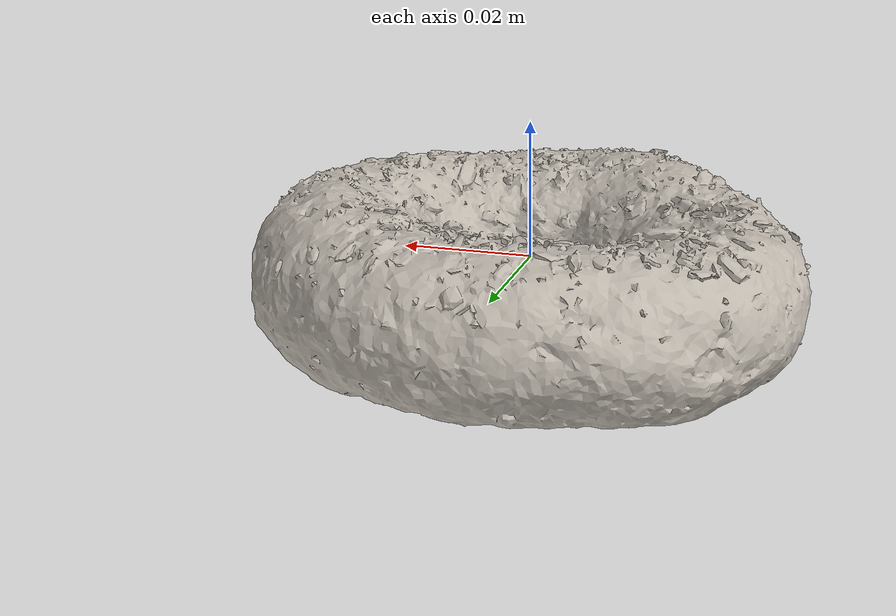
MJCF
<mujoco model="more_bagel_7">
    <compiler angle="radian"/>
  <default>
    <default class="visual">
      <geom group="1" type="mesh" contype="0" conaffinity="0"  mass="0.01"/>
    </default>
    <default class="collision">
    <geom group="0" type="mesh" solref="0.001 2"  solimp="0.998 0.998 0.001" mass="0.01"/>
    </default>
    <default class="grasppoint">
      <site type="sphere" size="0.01" group="4" rgba="0 0 1 1"/>
    </default>
  </default>
  <asset>
    <mesh file="visual/model_normalized_0.obj" name="model_normalized_0_vis" scale="0.08 0.08 0.08" refquat="1.0 0.0 0.0 0.0"/>
    <mesh file="collision/model_normalized_collision_22.obj" name="model_normalized_collision_22._coll" scale="0.08 0.08 0.08" refquat="1.0 0.0 0.0 0.0"/>
    <mesh file="collision/model_normalized_collision_23.obj" name="model_normalized_collision_23._coll" scale="0.08 0.08 0.08" refquat="1.0 0.0 0.0 0.0"/>
    <mesh file="collision/model_normalized_collision_21.obj" name="model_normalized_collision_21._coll" scale="0.08 0.08 0.08" refquat="1.0 0.0 0.0 0.0"/>
    <mesh file="collision/model_normalized_collision_20.obj" name="model_normalized_collision_20._coll" scale="0.08 0.08 0.08" refquat="1.0 0.0 0.0 0.0"/>
    <mesh file="collision/model_normalized_collision_24.obj" name="model_normalized_collision_24._coll" scale="0.08 0.08 0.08" refquat="1.0 0.0 0.0 0.0"/>
    <mesh file="collision/model_normalized_collision_30.obj" name="model_normalized_collision_30._coll" scale="0.08 0.08 0.08" refquat="1.0 0.0 0.0 0.0"/>
    <mesh file="collision/model_normalized_collision_18.obj" name="model_normalized_collision_18._coll" scale="0.08 0.08 0.08" refquat="1.0 0.0 0.0 0.0"/>
    <mesh file="collision/model_normalized_collision_19.obj" name="model_normalized_collision_19._coll" scale="0.08 0.08 0.08" refquat="1.0 0.0 0.0 0.0"/>
    <mesh file="collision/model_normalized_collision_31.obj" name="model_normalized_collision_31._coll" scale="0.08 0.08 0.08" refquat="1.0 0.0 0.0 0.0"/>
    <mesh file="collision/model_normalized_collision_25.obj" name="model_normalized_collision_25._coll" scale="0.08 0.08 0.08" refquat="1.0 0.0 0.0 0.0"/>
    <mesh file="collision/model_normalized_collision_27.obj" name="model_normalized_collision_27._coll" scale="0.08 0.08 0.08" refquat="1.0 0.0 0.0 0.0"/>
    <mesh file="collision/model_normalized_collision_26.obj" name="model_normalized_collision_26._coll" scale="0.08 0.08 0.08" refquat="1.0 0.0 0.0 0.0"/>
    <mesh file="collision/model_normalized_collision_9.obj" name="model_normalized_collision_9._coll" scale="0.08 0.08 0.08" refquat="1.0 0.0 0.0 0.0"/>
    <mesh file="collision/model_normalized_collision_8.obj" name="model_normalized_collision_8._coll" scale="0.08 0.08 0.08" refquat="1.0 0.0 0.0 0.0"/>
    <mesh file="collision/model_normalized_collision_6.obj" name="model_normalized_collision_6._coll" scale="0.08 0.08 0.08" refquat="1.0 0.0 0.0 0.0"/>
    <mesh file="collision/model_normalized_collision_7.obj" name="model_normalized_collision_7._coll" scale="0.08 0.08 0.08" refquat="1.0 0.0 0.0 0.0"/>
    <mesh file="collision/model_normalized_collision_5.obj" name="model_normalized_collision_5._coll" scale="0.08 0.08 0.08" refquat="1.0 0.0 0.0 0.0"/>
    <mesh file="collision/model_normalized_collision_4.obj" name="model_normalized_collision_4._coll" scale="0.08 0.08 0.08" refquat="1.0 0.0 0.0 0.0"/>
    <mesh file="collision/model_normalized_collision_0.obj" name="model_normalized_collision_0._coll" scale="0.08 0.08 0.08" refquat="1.0 0.0 0.0 0.0"/>
    <mesh file="collision/model_normalized_collision_1.obj" name="model_normalized_collision_1._coll" scale="0.08 0.08 0.08" refquat="1.0 0.0 0.0 0.0"/>
    <mesh file="collision/model_normalized_collision_3.obj" name="model_normalized_collision_3._coll" scale="0.08 0.08 0.08" refquat="1.0 0.0 0.0 0.0"/>
    <mesh file="collision/model_normalized_collision_2.obj" name="model_normalized_collision_2._coll" scale="0.08 0.08 0.08" refquat="1.0 0.0 0.0 0.0"/>
    <mesh file="collision/model_normalized_collision_17.obj" name="model_normalized_collision_17._coll" scale="0.08 0.08 0.08" refquat="1.0 0.0 0.0 0.0"/>
    <mesh file="collision/model_normalized_collision_16.obj" name="model_normalized_collision_16._coll" scale="0.08 0.08 0.08" refquat="1.0 0.0 0.0 0.0"/>
    <mesh file="collision/model_normalized_collision_28.obj" name="model_normalized_collision_28._coll" scale="0.08 0.08 0.08" refquat="1.0 0.0 0.0 0.0"/>
    <mesh file="collision/model_normalized_collision_14.obj" name="model_normalized_collision_14._coll" scale="0.08 0.08 0.08" refquat="1.0 0.0 0.0 0.0"/>
    <mesh file="collision/model_normalized_collision_15.obj" name="model_normalized_collision_15._coll" scale="0.08 0.08 0.08" refquat="1.0 0.0 0.0 0.0"/>
    <mesh file="collision/model_normalized_collision_29.obj" name="model_normalized_collision_29._coll" scale="0.08 0.08 0.08" refquat="1.0 0.0 0.0 0.0"/>
    <mesh file="collision/model_normalized_collision_11.obj" name="model_normalized_collision_11._coll" scale="0.08 0.08 0.08" refquat="1.0 0.0 0.0 0.0"/>
    <mesh file="collision/model_normalized_collision_10.obj" name="model_normalized_collision_10._coll" scale="0.08 0.08 0.08" refquat="1.0 0.0 0.0 0.0"/>
    <mesh file="collision/model_normalized_collision_12.obj" name="model_normalized_collision_12._coll" scale="0.08 0.08 0.08" refquat="1.0 0.0 0.0 0.0"/>
    <mesh file="collision/model_normalized_collision_13.obj" name="model_normalized_collision_13._coll" scale="0.08 0.08 0.08" refquat="1.0 0.0 0.0 0.0"/>
    <texture type="2d" name="image0" file="visual/image0.png"/>
    <material name="HQ.004" texture="image0" specular="0.5" shininess="0.25"/>
  </asset>
  <worldbody>
  <body>
      <body name="object">
        <geom solimp="0.998 0.998 0.001" solref="0.001 1" density="100" friction="0.95 0.3 0.1" type="mesh" mesh="model_normalized_0_vis" conaffinity="0" contype="0" group="1" material="HQ.004"/>
        <geom solimp="0.998 0.998 0.001" solref="0.001 1" density="100" friction="0.95 0.3 0.1" type="mesh" mesh="model_normalized_collision_22._coll" group="0" rgba="0.8 0.8 0.8 0.0"/>
        <geom solimp="0.998 0.998 0.001" solref="0.001 1" density="100" friction="0.95 0.3 0.1" type="mesh" mesh="model_normalized_collision_23._coll" group="0" rgba="0.8 0.8 0.8 0.0"/>
        <geom solimp="0.998 0.998 0.001" solref="0.001 1" density="100" friction="0.95 0.3 0.1" type="mesh" mesh="model_normalized_collision_21._coll" group="0" rgba="0.8 0.8 0.8 0.0"/>
        <geom solimp="0.998 0.998 0.001" solref="0.001 1" density="100" friction="0.95 0.3 0.1" type="mesh" mesh="model_normalized_collision_20._coll" group="0" rgba="0.8 0.8 0.8 0.0"/>
        <geom solimp="0.998 0.998 0.001" solref="0.001 1" density="100" friction="0.95 0.3 0.1" type="mesh" mesh="model_normalized_collision_24._coll" group="0" rgba="0.8 0.8 0.8 0.0"/>
        <geom solimp="0.998 0.998 0.001" solref="0.001 1" density="100" friction="0.95 0.3 0.1" type="mesh" mesh="model_normalized_collision_30._coll" group="0" rgba="0.8 0.8 0.8 0.0"/>
        <geom solimp="0.998 0.998 0.001" solref="0.001 1" density="100" friction="0.95 0.3 0.1" type="mesh" mesh="model_normalized_collision_18._coll" group="0" rgba="0.8 0.8 0.8 0.0"/>
        <geom solimp="0.998 0.998 0.001" solref="0.001 1" density="100" friction="0.95 0.3 0.1" type="mesh" mesh="model_normalized_collision_19._coll" group="0" rgba="0.8 0.8 0.8 0.0"/>
        <geom solimp="0.998 0.998 0.001" solref="0.001 1" density="100" friction="0.95 0.3 0.1" type="mesh" mesh="model_normalized_collision_31._coll" group="0" rgba="0.8 0.8 0.8 0.0"/>
        <geom solimp="0.998 0.998 0.001" solref="0.001 1" density="100" friction="0.95 0.3 0.1" type="mesh" mesh="model_normalized_collision_25._coll" group="0" rgba="0.8 0.8 0.8 0.0"/>
        <geom solimp="0.998 0.998 0.001" solref="0.001 1" density="100" friction="0.95 0.3 0.1" type="mesh" mesh="model_normalized_collision_27._coll" group="0" rgba="0.8 0.8 0.8 0.0"/>
        <geom solimp="0.998 0.998 0.001" solref="0.001 1" density="100" friction="0.95 0.3 0.1" type="mesh" mesh="model_normalized_collision_26._coll" group="0" rgba="0.8 0.8 0.8 0.0"/>
        <geom solimp="0.998 0.998 0.001" solref="0.001 1" density="100" friction="0.95 0.3 0.1" type="mesh" mesh="model_normalized_collision_9._coll" group="0" rgba="0.8 0.8 0.8 0.0"/>
        <geom solimp="0.998 0.998 0.001" solref="0.001 1" density="100" friction="0.95 0.3 0.1" type="mesh" mesh="model_normalized_collision_8._coll" group="0" rgba="0.8 0.8 0.8 0.0"/>
        <geom solimp="0.998 0.998 0.001" solref="0.001 1" density="100" friction="0.95 0.3 0.1" type="mesh" mesh="model_normalized_collision_6._coll" group="0" rgba="0.8 0.8 0.8 0.0"/>
        <geom solimp="0.998 0.998 0.001" solref="0.001 1" density="100" friction="0.95 0.3 0.1" type="mesh" mesh="model_normalized_collision_7._coll" group="0" rgba="0.8 0.8 0.8 0.0"/>
        <geom solimp="0.998 0.998 0.001" solref="0.001 1" density="100" friction="0.95 0.3 0.1" type="mesh" mesh="model_normalized_collision_5._coll" group="0" rgba="0.8 0.8 0.8 0.0"/>
        <geom solimp="0.998 0.998 0.001" solref="0.001 1" density="100" friction="0.95 0.3 0.1" type="mesh" mesh="model_normalized_collision_4._coll" group="0" rgba="0.8 0.8 0.8 0.0"/>
        <geom solimp="0.998 0.998 0.001" solref="0.001 1" density="100" friction="0.95 0.3 0.1" type="mesh" mesh="model_normalized_collision_0._coll" group="0" rgba="0.8 0.8 0.8 0.0"/>
        <geom solimp="0.998 0.998 0.001" solref="0.001 1" density="100" friction="0.95 0.3 0.1" type="mesh" mesh="model_normalized_collision_1._coll" group="0" rgba="0.8 0.8 0.8 0.0"/>
        <geom solimp="0.998 0.998 0.001" solref="0.001 1" density="100" friction="0.95 0.3 0.1" type="mesh" mesh="model_normalized_collision_3._coll" group="0" rgba="0.8 0.8 0.8 0.0"/>
        <geom solimp="0.998 0.998 0.001" solref="0.001 1" density="100" friction="0.95 0.3 0.1" type="mesh" mesh="model_normalized_collision_2._coll" group="0" rgba="0.8 0.8 0.8 0.0"/>
        <geom solimp="0.998 0.998 0.001" solref="0.001 1" density="100" friction="0.95 0.3 0.1" type="mesh" mesh="model_normalized_collision_17._coll" group="0" rgba="0.8 0.8 0.8 0.0"/>
        <geom solimp="0.998 0.998 0.001" solref="0.001 1" density="100" friction="0.95 0.3 0.1" type="mesh" mesh="model_normalized_collision_16._coll" group="0" rgba="0.8 0.8 0.8 0.0"/>
        <geom solimp="0.998 0.998 0.001" solref="0.001 1" density="100" friction="0.95 0.3 0.1" type="mesh" mesh="model_normalized_collision_28._coll" group="0" rgba="0.8 0.8 0.8 0.0"/>
        <geom solimp="0.998 0.998 0.001" solref="0.001 1" density="100" friction="0.95 0.3 0.1" type="mesh" mesh="model_normalized_collision_14._coll" group="0" rgba="0.8 0.8 0.8 0.0"/>
        <geom solimp="0.998 0.998 0.001" solref="0.001 1" density="100" friction="0.95 0.3 0.1" type="mesh" mesh="model_normalized_collision_15._coll" group="0" rgba="0.8 0.8 0.8 0.0"/>
        <geom solimp="0.998 0.998 0.001" solref="0.001 1" density="100" friction="0.95 0.3 0.1" type="mesh" mesh="model_normalized_collision_29._coll" group="0" rgba="0.8 0.8 0.8 0.0"/>
        <geom solimp="0.998 0.998 0.001" solref="0.001 1" density="100" friction="0.95 0.3 0.1" type="mesh" mesh="model_normalized_collision_11._coll" group="0" rgba="0.8 0.8 0.8 0.0"/>
        <geom solimp="0.998 0.998 0.001" solref="0.001 1" density="100" friction="0.95 0.3 0.1" type="mesh" mesh="model_normalized_collision_10._coll" group="0" rgba="0.8 0.8 0.8 0.0"/>
        <geom solimp="0.998 0.998 0.001" solref="0.001 1" density="100" friction="0.95 0.3 0.1" type="mesh" mesh="model_normalized_collision_12._coll" group="0" rgba="0.8 0.8 0.8 0.0"/>
        <geom solimp="0.998 0.998 0.001" solref="0.001 1" density="100" friction="0.95 0.3 0.1" type="mesh" mesh="model_normalized_collision_13._coll" group="0" rgba="0.8 0.8 0.8 0.0"/>
      </body>
      <site rgba="0 0 0 0" size="0.005" pos="-0.00025043750000000033 -0.0004016190000000003 -0.015416398999999997" name="bottom_site"/>
      <site rgba="0 0 0 0" size="0.005" pos="-0.00025043750000000033 -0.0004016190000000003 0.015584123" name="top_site"/>
      <site rgba="0 0 0 0" size="0.005" pos="0.049281621 0.046576369000000006 8.386199999999983e-05" name="horizontal_radius_site"/>
      <site class="grasppoint" pos="0.035 0 0"/>
</body>
</worldbody>
</mujoco>
